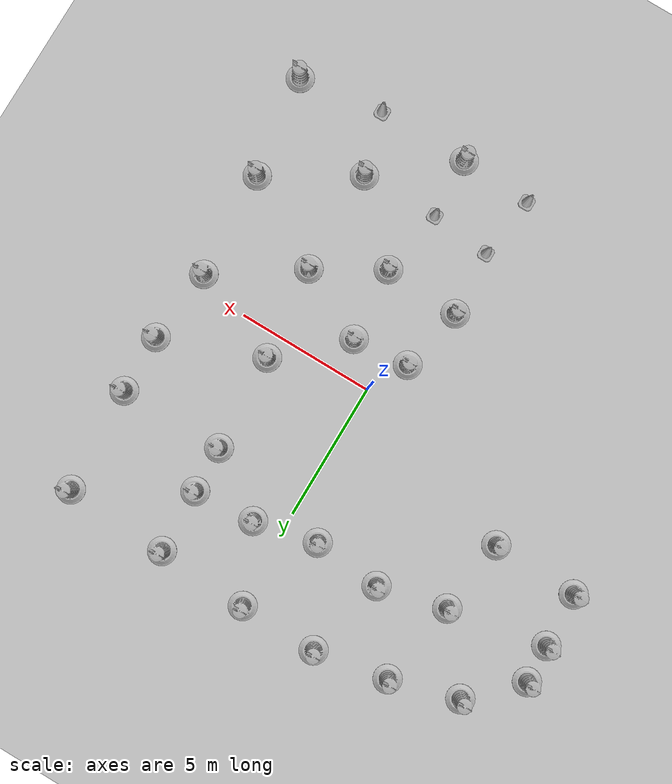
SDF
<sdf version="1.7">
 <world name="default">
  <light name="sun" type="directional">
   <pose>0 0 10 0 -0 0</pose>
   <diffuse>0.8 0.8 0.8 1</diffuse>
   <specular>0.2 0.2 0.2 1</specular>
   <attenuation>
    <range>1000</range>
    <constant>0.9</constant>
    <linear>0.01</linear>
    <quadratic>0.001</quadratic>
   </attenuation>
   <direction>-0.5 0.1 -0.9</direction>
   <spot><inner_angle>0</inner_angle><outer_angle>0</outer_angle><falloff>0</falloff></spot>
  </light>
  <model name="ground_plane">
   <static>1</static>
   <link name="link">
    <collision name="collision">
     <geometry><plane><normal>0 0 1</normal><size>100 100</size></plane></geometry>
     <surface><friction><ode><mu>100</mu><mu2>50</mu2></ode></friction></surface>
    </collision>
    <visual name="visual">
     <cast_shadows>0</cast_shadows>
     <geometry><plane><normal>0 0 1</normal><size>100 100</size></plane></geometry>
     <material>
      <script><uri>file://media/materials/scripts/gazebo.material</uri><name>Gazebo/Grey</name></script>
     </material>
    </visual>
   </link>
  </model>
  <gravity>0 0 -9.8</gravity>
  <magnetic_field>6e-06 2.3e-05 -4.2e-05</magnetic_field>
  <atmosphere type="adiabatic"/>
  <physics type="ode">
   <max_step_size>0.001</max_step_size>
   <real_time_factor>1</real_time_factor>
   <real_time_update_rate>1000</real_time_update_rate>
  </physics>
  <scene><ambient>0.4 0.4 0.4 1</ambient><background>0.7 0.7 0.7 1</background><shadows>1</shadows></scene>
  <audio><device>default</device></audio>
  <spherical_coordinates>
   <surface_model>EARTH_WGS84</surface_model>
   <latitude_deg>0</latitude_deg>
   <longitude_deg>0</longitude_deg>
   <elevation>0</elevation>
   <heading_deg>0</heading_deg>
  </spherical_coordinates>
  <model name="Construction Cone">
   <link name="link">
    <collision name="collision">
     <geometry>
      <mesh><scale>10 10 10</scale><uri>model://construction_cone/meshes/construction_cone.dae</uri></mesh>
     </geometry>
    </collision>
    <visual name="visual">
     <geometry>
      <mesh><scale>10 10 10</scale><uri>model://construction_cone/meshes/construction_cone.dae</uri></mesh>
     </geometry>
    </visual>
    <inertial>
     <inertia><ixx>1</ixx><ixy>0</ixy><ixz>0</ixz><iyy>1</iyy><iyz>0</iyz><izz>1</izz></inertia>
     <mass>1</mass>
    </inertial>
   </link>
   <pose>-1.41385 -8.49513 -0 0 -1e-06 0</pose>
  </model>
  <model name="Construction Cone_0">
   <link name="link">
    <collision name="collision">
     <geometry>
      <mesh><scale>10 10 10</scale><uri>model://construction_cone/meshes/construction_cone.dae</uri></mesh>
     </geometry>
    </collision>
    <visual name="visual">
     <geometry>
      <mesh><scale>10 10 10</scale><uri>model://construction_cone/meshes/construction_cone.dae</uri></mesh>
     </geometry>
    </visual>
    <inertial>
     <inertia><ixx>1</ixx><ixy>0</ixy><ixz>0</ixz><iyy>1</iyy><iyz>0</iyz><izz>1</izz></inertia>
     <mass>1</mass>
    </inertial>
   </link>
   <pose>-1.10623 -6.2161 -0 0 -1e-06 0</pose>
  </model>
  <model name="Construction Cone_1">
   <link name="link">
    <collision name="collision">
     <geometry>
      <mesh><scale>10 10 10</scale><uri>model://construction_cone/meshes/construction_cone.dae</uri></mesh>
     </geometry>
    </collision>
    <visual name="visual">
     <geometry>
      <mesh><scale>10 10 10</scale><uri>model://construction_cone/meshes/construction_cone.dae</uri></mesh>
     </geometry>
    </visual>
    <inertial>
     <inertia><ixx>1</ixx><ixy>0</ixy><ixz>0</ixz><iyy>1</iyy><iyz>0</iyz><izz>1</izz></inertia>
     <mass>1</mass>
    </inertial>
   </link>
   <pose>1.09555 -6.43042 -0 0 -1e-06 0</pose>
  </model>
  <model name="Construction Barrel">
   <link name="link">
    <inertial>
     <pose>0 0 0.4 0 -0 0</pose>
     <mass>500</mass>
     <inertia><ixx>51.2096</ixx><iyy>51.2096</iyy><izz>25</izz><ixy>0</ixy><ixz>0</ixz><iyz>0</iyz></inertia>
    </inertial>
    <collision name="collision">
     <geometry><mesh><uri>model://construction_barrel/meshes/construction_barrel.dae</uri></mesh></geometry>
    </collision>
    <visual name="visual">
     <geometry><mesh><uri>model://construction_barrel/meshes/construction_barrel.dae</uri></mesh></geometry>
    </visual>
   </link>
   <pose>1.21246 -8.64369 -1e-06 1e-06 -9e-06 -4.3e-05</pose>
  </model>
  <model name="Construction Cone_2">
   <link name="link">
    <collision name="collision">
     <geometry>
      <mesh><scale>10 10 10</scale><uri>model://construction_cone/meshes/construction_cone.dae</uri></mesh>
     </geometry>
    </collision>
    <visual name="visual">
     <geometry>
      <mesh><scale>10 10 10</scale><uri>model://construction_cone/meshes/construction_cone.dae</uri></mesh>
     </geometry>
    </visual>
    <inertial>
     <inertia><ixx>1</ixx><ixy>0</ixy><ixz>0</ixz><iyy>1</iyy><iyz>0</iyz><izz>1</izz></inertia>
     <mass>1</mass>
    </inertial>
   </link>
   <pose>4.5569 -8.64512 -0 -0 -0 -0</pose>
  </model>
  <model name="Construction Barrel_0">
   <link name="link">
    <inertial>
     <pose>0 0 0.4 0 -0 0</pose>
     <mass>500</mass>
     <inertia><ixx>51.2096</ixx><iyy>51.2096</iyy><izz>25</izz><ixy>0</ixy><ixz>0</ixz><iyz>0</iyz></inertia>
    </inertial>
    <collision name="collision">
     <geometry><mesh><uri>model://construction_barrel/meshes/construction_barrel.dae</uri></mesh></geometry>
    </collision>
    <visual name="visual">
     <geometry><mesh><uri>model://construction_barrel/meshes/construction_barrel.dae</uri></mesh></geometry>
    </visual>
   </link>
   <pose>3.93887 -6.39521 -1e-06 1e-06 -9e-06 -4.1e-05</pose>
  </model>
  <model name="Construction Barrel_1">
   <link name="link">
    <inertial>
     <pose>0 0 0.4 0 -0 0</pose>
     <mass>500</mass>
     <inertia><ixx>51.2096</ixx><iyy>51.2096</iyy><izz>25</izz><ixy>0</ixy><ixz>0</ixz><iyz>0</iyz></inertia>
    </inertial>
    <collision name="collision">
     <geometry><mesh><uri>model://construction_barrel/meshes/construction_barrel.dae</uri></mesh></geometry>
    </collision>
    <visual name="visual">
     <geometry><mesh><uri>model://construction_barrel/meshes/construction_barrel.dae</uri></mesh></geometry>
    </visual>
   </link>
   <pose>7.6551 -8.20601 -1e-06 1e-06 -9e-06 -3.9e-05</pose>
  </model>
  <model name="Construction Barrel_2">
   <link name="link">
    <inertial>
     <pose>0 0 0.4 0 -0 0</pose>
     <mass>500</mass>
     <inertia><ixx>51.2096</ixx><iyy>51.2096</iyy><izz>25</izz><ixy>0</ixy><ixz>0</ixz><iyz>0</iyz></inertia>
    </inertial>
    <collision name="collision">
     <geometry><mesh><uri>model://construction_barrel/meshes/construction_barrel.dae</uri></mesh></geometry>
    </collision>
    <visual name="visual">
     <geometry><mesh><uri>model://construction_barrel/meshes/construction_barrel.dae</uri></mesh></geometry>
    </visual>
   </link>
   <pose>7.1504 -4.45319 -1e-06 0 5e-06 -3.9e-05</pose>
  </model>
  <model name="Construction Barrel_3">
   <link name="link">
    <inertial>
     <pose>0 0 0.4 0 -0 0</pose>
     <mass>500</mass>
     <inertia><ixx>51.2096</ixx><iyy>51.2096</iyy><izz>25</izz><ixy>0</ixy><ixz>0</ixz><iyz>0</iyz></inertia>
    </inertial>
    <collision name="collision">
     <geometry><mesh><uri>model://construction_barrel/meshes/construction_barrel.dae</uri></mesh></geometry>
    </collision>
    <visual name="visual">
     <geometry><mesh><uri>model://construction_barrel/meshes/construction_barrel.dae</uri></mesh></geometry>
    </visual>
   </link>
   <pose>3.90672 -2.5742 -1e-06 1e-06 -9e-06 -3.7e-05</pose>
  </model>
  <model name="Construction Barrel_4">
   <link name="link">
    <inertial>
     <pose>0 0 0.4 0 -0 0</pose>
     <mass>500</mass>
     <inertia><ixx>51.2096</ixx><iyy>51.2096</iyy><izz>25</izz><ixy>0</ixy><ixz>0</ixz><iyz>0</iyz></inertia>
    </inertial>
    <collision name="collision">
     <geometry><mesh><uri>model://construction_barrel/meshes/construction_barrel.dae</uri></mesh></geometry>
    </collision>
    <visual name="visual">
     <geometry><mesh><uri>model://construction_barrel/meshes/construction_barrel.dae</uri></mesh></geometry>
    </visual>
   </link>
   <pose>6.93981 -0.524723 -1e-06 1e-06 -9e-06 -3.6e-05</pose>
  </model>
  <model name="Construction Barrel_5">
   <link name="link">
    <inertial>
     <pose>0 0 0.4 0 -0 0</pose>
     <mass>500</mass>
     <inertia><ixx>51.2096</ixx><iyy>51.2096</iyy><izz>25</izz><ixy>0</ixy><ixz>0</ixz><iyz>0</iyz></inertia>
    </inertial>
    <collision name="collision">
     <geometry><mesh><uri>model://construction_barrel/meshes/construction_barrel.dae</uri></mesh></geometry>
    </collision>
    <visual name="visual">
     <geometry><mesh><uri>model://construction_barrel/meshes/construction_barrel.dae</uri></mesh></geometry>
    </visual>
   </link>
   <pose>3.53382 0.834795 -1e-06 1e-06 -9e-06 -3.5e-05</pose>
  </model>
  <model name="Construction Barrel_6">
   <link name="link">
    <inertial>
     <pose>0 0 0.4 0 -0 0</pose>
     <mass>500</mass>
     <inertia><ixx>51.2096</ixx><iyy>51.2096</iyy><izz>25</izz><ixy>0</ixy><ixz>0</ixz><iyz>0</iyz></inertia>
    </inertial>
    <collision name="collision">
     <geometry><mesh><uri>model://construction_barrel/meshes/construction_barrel.dae</uri></mesh></geometry>
    </collision>
    <visual name="visual">
     <geometry><mesh><uri>model://construction_barrel/meshes/construction_barrel.dae</uri></mesh></geometry>
    </visual>
   </link>
   <pose>7.1824 4.36784 -0 1e-06 -1e-06 -3.6e-05</pose>
  </model>
  <model name="Construction Barrel_7">
   <link name="link">
    <inertial>
     <pose>0 0 0.4 0 -0 0</pose>
     <mass>500</mass>
     <inertia><ixx>51.2096</ixx><iyy>51.2096</iyy><izz>25</izz><ixy>0</ixy><ixz>0</ixz><iyz>0</iyz></inertia>
    </inertial>
    <collision name="collision">
     <geometry><mesh><uri>model://construction_barrel/meshes/construction_barrel.dae</uri></mesh></geometry>
    </collision>
    <visual name="visual">
     <geometry><mesh><uri>model://construction_barrel/meshes/construction_barrel.dae</uri></mesh></geometry>
    </visual>
   </link>
   <pose>7.21725 2.2176 0 0 0 -3.2e-05</pose>
  </model>
  <model name="Construction Barrel_8">
   <link name="link">
    <inertial>
     <pose>0 0 0.4 0 -0 0</pose>
     <mass>500</mass>
     <inertia><ixx>51.2096</ixx><iyy>51.2096</iyy><izz>25</izz><ixy>0</ixy><ixz>0</ixz><iyz>0</iyz></inertia>
    </inertial>
    <collision name="collision">
     <geometry><mesh><uri>model://construction_barrel/meshes/construction_barrel.dae</uri></mesh></geometry>
    </collision>
    <visual name="visual">
     <geometry><mesh><uri>model://construction_barrel/meshes/construction_barrel.dae</uri></mesh></geometry>
    </visual>
   </link>
   <pose>3.33967 4.3632 -1e-06 1e-06 -9e-06 -3.1e-05</pose>
  </model>
  <model name="Construction Barrel_9">
   <link name="link">
    <inertial>
     <pose>0 0 0.4 0 -0 0</pose>
     <mass>500</mass>
     <inertia><ixx>51.2096</ixx><iyy>51.2096</iyy><izz>25</izz><ixy>0</ixy><ixz>0</ixz><iyz>0</iyz></inertia>
    </inertial>
    <collision name="collision">
     <geometry><mesh><uri>model://construction_barrel/meshes/construction_barrel.dae</uri></mesh></geometry>
    </collision>
    <visual name="visual">
     <geometry><mesh><uri>model://construction_barrel/meshes/construction_barrel.dae</uri></mesh></geometry>
    </visual>
   </link>
   <pose>6.96482 8.2165 -1e-06 0 5e-06 -3.1e-05</pose>
  </model>
  <model name="Construction Barrel_10">
   <link name="link">
    <inertial>
     <pose>0 0 0.4 0 -0 0</pose>
     <mass>500</mass>
     <inertia><ixx>51.2096</ixx><iyy>51.2096</iyy><izz>25</izz><ixy>0</ixy><ixz>0</ixz><iyz>0</iyz></inertia>
    </inertial>
    <collision name="collision">
     <geometry><mesh><uri>model://construction_barrel/meshes/construction_barrel.dae</uri></mesh></geometry>
    </collision>
    <visual name="visual">
     <geometry><mesh><uri>model://construction_barrel/meshes/construction_barrel.dae</uri></mesh></geometry>
    </visual>
   </link>
   <pose>3.17571 8.38917 -1e-06 2e-06 -2e-06 -1.1e-05</pose>
  </model>
  <model name="Construction Barrel_11">
   <link name="link">
    <inertial>
     <pose>0 0 0.4 0 -0 0</pose>
     <mass>500</mass>
     <inertia><ixx>51.2096</ixx><iyy>51.2096</iyy><izz>25</izz><ixy>0</ixy><ixz>0</ixz><iyz>0</iyz></inertia>
    </inertial>
    <collision name="collision">
     <geometry><mesh><uri>model://construction_barrel/meshes/construction_barrel.dae</uri></mesh></geometry>
    </collision>
    <visual name="visual">
     <geometry><mesh><uri>model://construction_barrel/meshes/construction_barrel.dae</uri></mesh></geometry>
    </visual>
   </link>
   <pose>-0.166161 8.55761 -1e-06 1e-06 -9e-06 -2.7e-05</pose>
  </model>
  <model name="Construction Barrel_12">
   <link name="link">
    <inertial>
     <pose>0 0 0.4 0 -0 0</pose>
     <mass>500</mass>
     <inertia><ixx>51.2096</ixx><iyy>51.2096</iyy><izz>25</izz><ixy>0</ixy><ixz>0</ixz><iyz>0</iyz></inertia>
    </inertial>
    <collision name="collision">
     <geometry><mesh><uri>model://construction_barrel/meshes/construction_barrel.dae</uri></mesh></geometry>
    </collision>
    <visual name="visual">
     <geometry><mesh><uri>model://construction_barrel/meshes/construction_barrel.dae</uri></mesh></geometry>
    </visual>
   </link>
   <pose>1.02993 5.90184 -2e-06 7e-06 -4e-06 -3.7e-05</pose>
  </model>
  <model name="Construction Barrel_13">
   <link name="link">
    <inertial>
     <pose>0 0 0.4 0 -0 0</pose>
     <mass>500</mass>
     <inertia><ixx>51.2096</ixx><iyy>51.2096</iyy><izz>25</izz><ixy>0</ixy><ixz>0</ixz><iyz>0</iyz></inertia>
    </inertial>
    <collision name="collision">
     <geometry><mesh><uri>model://construction_barrel/meshes/construction_barrel.dae</uri></mesh></geometry>
    </collision>
    <visual name="visual">
     <geometry><mesh><uri>model://construction_barrel/meshes/construction_barrel.dae</uri></mesh></geometry>
    </visual>
   </link>
   <pose>3.267 6.05617 -1e-06 4e-06 -2e-06 -2.9e-05</pose>
  </model>
  <model name="Construction Barrel_14">
   <link name="link">
    <inertial>
     <pose>0 0 0.4 0 -0 0</pose>
     <mass>500</mass>
     <inertia><ixx>51.2096</ixx><iyy>51.2096</iyy><izz>25</izz><ixy>0</ixy><ixz>0</ixz><iyz>0</iyz></inertia>
    </inertial>
    <collision name="collision">
     <geometry><mesh><uri>model://construction_barrel/meshes/construction_barrel.dae</uri></mesh></geometry>
    </collision>
    <visual name="visual">
     <geometry><mesh><uri>model://construction_barrel/meshes/construction_barrel.dae</uri></mesh></geometry>
    </visual>
   </link>
   <pose>-1.25574 5.38912 -1e-06 4e-06 -2e-06 -2.8e-05</pose>
  </model>
  <model name="Construction Barrel_15">
   <link name="link">
    <inertial>
     <pose>0 0 0.4 0 -0 0</pose>
     <mass>500</mass>
     <inertia><ixx>51.2096</ixx><iyy>51.2096</iyy><izz>25</izz><ixy>0</ixy><ixz>0</ixz><iyz>0</iyz></inertia>
    </inertial>
    <collision name="collision">
     <geometry><mesh><uri>model://construction_barrel/meshes/construction_barrel.dae</uri></mesh></geometry>
    </collision>
    <visual name="visual">
     <geometry><mesh><uri>model://construction_barrel/meshes/construction_barrel.dae</uri></mesh></geometry>
    </visual>
   </link>
   <pose>1.29248 -1.2749 -1e-06 4e-06 -2e-06 -2.7e-05</pose>
  </model>
  <model name="Construction Barrel_16">
   <link name="link">
    <inertial>
     <pose>0 0 0.4 0 -0 0</pose>
     <mass>500</mass>
     <inertia><ixx>51.2096</ixx><iyy>51.2096</iyy><izz>25</izz><ixy>0</ixy><ixz>0</ixz><iyz>0</iyz></inertia>
    </inertial>
    <collision name="collision">
     <geometry><mesh><uri>model://construction_barrel/meshes/construction_barrel.dae</uri></mesh></geometry>
    </collision>
    <visual name="visual">
     <geometry><mesh><uri>model://construction_barrel/meshes/construction_barrel.dae</uri></mesh></geometry>
    </visual>
   </link>
   <pose>-0.766799 -1.46161 -1e-06 3e-06 -2e-06 -2.7e-05</pose>
  </model>
  <model name="Construction Barrel_17">
   <link name="link">
    <inertial>
     <pose>0 0 0.4 0 -0 0</pose>
     <mass>500</mass>
     <inertia><ixx>51.2096</ixx><iyy>51.2096</iyy><izz>25</izz><ixy>0</ixy><ixz>0</ixz><iyz>0</iyz></inertia>
    </inertial>
    <collision name="collision">
     <geometry><mesh><uri>model://construction_barrel/meshes/construction_barrel.dae</uri></mesh></geometry>
    </collision>
    <visual name="visual">
     <geometry><mesh><uri>model://construction_barrel/meshes/construction_barrel.dae</uri></mesh></geometry>
    </visual>
   </link>
   <pose>-1.2641 -3.85375 -2e-06 7e-06 -2e-06 -2.3e-05</pose>
  </model>
  <model name="Construction Barrel_18">
   <link name="link">
    <inertial>
     <pose>0 0 0.4 0 -0 0</pose>
     <mass>500</mass>
     <inertia><ixx>51.2096</ixx><iyy>51.2096</iyy><izz>25</izz><ixy>0</ixy><ixz>0</ixz><iyz>0</iyz></inertia>
    </inertial>
    <collision name="collision">
     <geometry><mesh><uri>model://construction_barrel/meshes/construction_barrel.dae</uri></mesh></geometry>
    </collision>
    <visual name="visual">
     <geometry><mesh><uri>model://construction_barrel/meshes/construction_barrel.dae</uri></mesh></geometry>
    </visual>
   </link>
   <pose>1.51599 -3.98034 -4e-06 -5e-06 -7e-06 -2.5e-05</pose>
  </model>
  <model name="Construction Barrel_19">
   <link name="link">
    <inertial>
     <pose>0 0 0.4 0 -0 0</pose>
     <mass>500</mass>
     <inertia><ixx>51.2096</ixx><iyy>51.2096</iyy><izz>25</izz><ixy>0</ixy><ixz>0</ixz><iyz>0</iyz></inertia>
    </inertial>
    <collision name="collision">
     <geometry><mesh><uri>model://construction_barrel/meshes/construction_barrel.dae</uri></mesh></geometry>
    </collision>
    <visual name="visual">
     <geometry><mesh><uri>model://construction_barrel/meshes/construction_barrel.dae</uri></mesh></geometry>
    </visual>
   </link>
   <pose>-3.01738 8.59069 -2e-06 7e-06 -4e-06 -2.5e-05</pose>
  </model>
  <model name="Construction Barrel_20">
   <link name="link">
    <inertial>
     <pose>0 0 0.4 0 -0 0</pose>
     <mass>500</mass>
     <inertia><ixx>51.2096</ixx><iyy>51.2096</iyy><izz>25</izz><ixy>0</ixy><ixz>0</ixz><iyz>0</iyz></inertia>
    </inertial>
    <collision name="collision">
     <geometry><mesh><uri>model://construction_barrel/meshes/construction_barrel.dae</uri></mesh></geometry>
    </collision>
    <visual name="visual">
     <geometry><mesh><uri>model://construction_barrel/meshes/construction_barrel.dae</uri></mesh></geometry>
    </visual>
   </link>
   <pose>-3.7421 5.6124 -0 3e-06 1e-06 -2.1e-05</pose>
  </model>
  <model name="Construction Barrel_21">
   <link name="link">
    <inertial>
     <pose>0 0 0.4 0 -0 0</pose>
     <mass>500</mass>
     <inertia><ixx>51.2096</ixx><iyy>51.2096</iyy><izz>25</izz><ixy>0</ixy><ixz>0</ixz><iyz>0</iyz></inertia>
    </inertial>
    <collision name="collision">
     <geometry><mesh><uri>model://construction_barrel/meshes/construction_barrel.dae</uri></mesh></geometry>
    </collision>
    <visual name="visual">
     <geometry><mesh><uri>model://construction_barrel/meshes/construction_barrel.dae</uri></mesh></geometry>
    </visual>
   </link>
   <pose>-5.6793 8.11508 -0 3e-06 1e-06 -2.2e-05</pose>
  </model>
  <model name="Construction Barrel_22">
   <link name="link">
    <inertial>
     <pose>0 0 0.4 0 -0 0</pose>
     <mass>500</mass>
     <inertia><ixx>51.2096</ixx><iyy>51.2096</iyy><izz>25</izz><ixy>0</ixy><ixz>0</ixz><iyz>0</iyz></inertia>
    </inertial>
    <collision name="collision">
     <geometry><mesh><uri>model://construction_barrel/meshes/construction_barrel.dae</uri></mesh></geometry>
    </collision>
    <visual name="visual">
     <geometry><mesh><uri>model://construction_barrel/meshes/construction_barrel.dae</uri></mesh></geometry>
    </visual>
   </link>
   <pose>-8.14706 7.41293 1e-06 1e-06 1e-06 -1.9e-05</pose>
  </model>
  <model name="Construction Barrel_23">
   <link name="link">
    <inertial>
     <pose>0 0 0.4 0 -0 0</pose>
     <mass>500</mass>
     <inertia><ixx>51.2096</ixx><iyy>51.2096</iyy><izz>25</izz><ixy>0</ixy><ixz>0</ixz><iyz>0</iyz></inertia>
    </inertial>
    <collision name="collision">
     <geometry><mesh><uri>model://construction_barrel/meshes/construction_barrel.dae</uri></mesh></geometry>
    </collision>
    <visual name="visual">
     <geometry><mesh><uri>model://construction_barrel/meshes/construction_barrel.dae</uri></mesh></geometry>
    </visual>
   </link>
   <pose>-6.20953 5.01877 -3e-06 -4e-06 -5e-06 -1.8e-05</pose>
  </model>
  <model name="Construction Barrel_24">
   <link name="link">
    <inertial>
     <pose>0 0 0.4 0 -0 0</pose>
     <mass>500</mass>
     <inertia><ixx>51.2096</ixx><iyy>51.2096</iyy><izz>25</izz><ixy>0</ixy><ixz>0</ixz><iyz>0</iyz></inertia>
    </inertial>
    <collision name="collision">
     <geometry><mesh><uri>model://construction_barrel/meshes/construction_barrel.dae</uri></mesh></geometry>
    </collision>
    <visual name="visual">
     <geometry><mesh><uri>model://construction_barrel/meshes/construction_barrel.dae</uri></mesh></geometry>
    </visual>
   </link>
   <pose>-9.79911 5.7452 -1e-06 4e-06 -1e-06 -1.2e-05</pose>
  </model>
  <model name="Construction Barrel_25">
   <link name="link">
    <inertial>
     <pose>0 0 0.4 0 -0 0</pose>
     <mass>500</mass>
     <inertia><ixx>51.2096</ixx><iyy>51.2096</iyy><izz>25</izz><ixy>0</ixy><ixz>0</ixz><iyz>0</iyz></inertia>
    </inertial>
    <collision name="collision">
     <geometry><mesh><uri>model://construction_barrel/meshes/construction_barrel.dae</uri></mesh></geometry>
    </collision>
    <visual name="visual">
     <geometry><mesh><uri>model://construction_barrel/meshes/construction_barrel.dae</uri></mesh></geometry>
    </visual>
   </link>
   <pose>-6.55195 2.29723 -0 0 0 -1.3e-05</pose>
  </model>
  <model name="Construction Barrel_26">
   <link name="link">
    <inertial>
     <pose>0 0 0.4 0 -0 0</pose>
     <mass>500</mass>
     <inertia><ixx>51.2096</ixx><iyy>51.2096</iyy><izz>25</izz><ixy>0</ixy><ixz>0</ixz><iyz>0</iyz></inertia>
    </inertial>
    <collision name="collision">
     <geometry><mesh><uri>model://construction_barrel/meshes/construction_barrel.dae</uri></mesh></geometry>
    </collision>
    <visual name="visual">
     <geometry><mesh><uri>model://construction_barrel/meshes/construction_barrel.dae</uri></mesh></geometry>
    </visual>
   </link>
   <pose>-9.66965 2.37311 -0 0 0 -1.2e-05</pose>
  </model>
  <model name="Construction Barrel_27">
   <link name="link">
    <inertial>
     <pose>0 0 0.4 0 -0 0</pose>
     <mass>500</mass>
     <inertia><ixx>51.2096</ixx><iyy>51.2096</iyy><izz>25</izz><ixy>0</ixy><ixz>0</ixz><iyz>0</iyz></inertia>
    </inertial>
    <collision name="collision">
     <geometry><mesh><uri>model://construction_barrel/meshes/construction_barrel.dae</uri></mesh></geometry>
    </collision>
    <visual name="visual">
     <geometry><mesh><uri>model://construction_barrel/meshes/construction_barrel.dae</uri></mesh></geometry>
    </visual>
   </link>
   <pose>-9.75269 4.35859 -0 0 0 -1.1e-05</pose>
  </model>
 </world>
</sdf>
